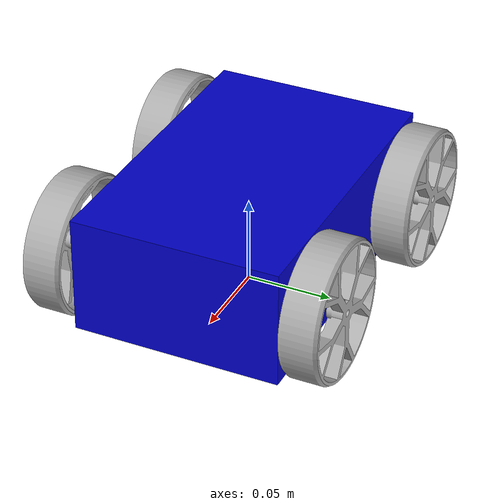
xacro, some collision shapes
<?xml version="1.0"?>
<robot name="rosbot" xmlns:xacro="http://ros.org/wiki/xacro">

  <!-- Properties -->
  <xacro:property name="M_PI" value="3.14159"/>
  <!-- Base Size -->
  <xacro:property name="base_length" value="0.184" />
  <xacro:property name="base_width" value="0.120" />
  <xacro:property name="base_height" value="0.068" />

  <!-- Wheel Properties -->
  <xacro:property name="wheel_base" value="0.123" />
  <xacro:property name="wheel_track" value="0.146" />
  <xacro:property name="wheel_vertical_offset" value="0" />
  <xacro:property name="wheel_width" value="0.025" />
  <xacro:property name="wheel_radius" value="0.040" />

  <!-- Calculated Properties -->
  <xacro:property name="base_vertical_offset" value="${wheel_radius-wheel_vertical_offset}" />

  <!-- Materials -->
  <material name="Blue">
    <color rgba="0.0 0.0 0.8 1.0"/>
  </material>
  <material name="Grey">
    <color rgba="0.7 0.7 0.7 1.0"/>
  </material>

  <!-- Wheel macro definition -->
  <xacro:macro name="rosbot_wheel" params="wheel_prefix flip *joint_pose">
    <!-- Wheel link -->
    <link name="${wheel_prefix}_wheel_link">
      <visual>
        <origin xyz="${flip*wheel_radius} ${-flip*wheel_width/2} ${-wheel_radius}" rpy="${M_PI/2} 0 ${flip*M_PI/2+M_PI/2}" />
        <geometry>
          <mesh filename="package://rosbot_description/meshes/wheel.dae" />
        </geometry>
        <material name="Grey" />
      </visual>

      <collision>
        <origin xyz="0 0 0" rpy="${M_PI/2} 0 0" />
        <geometry>
          <cylinder length="${wheel_width}" radius="${wheel_radius}" />
        </geometry>
      </collision>

      <inertial>
        <origin xyz="0 0 0"/>
        <mass value="0.15" />
        <inertia  ixx="0.0001" ixy="0" ixz="0"
                  iyy="0.0001" iyz="0"
                  izz="0.0001" />
      </inertial>
    </link>

    <gazebo reference="${wheel_prefix}_wheel_link">
      <mu1 value="200.0"/>
      <mu2 value="100.0"/>
      <kp value="10000000.0" />
      <kd value="1.0" />
      <material>Gazebo/Grey</material>
    </gazebo>

    <!-- Wheel to base joint -->
    <joint name="${wheel_prefix}" type="continuous">
      <parent link="base_link"/>
      <child link="${wheel_prefix}_wheel_link"/>
      <xacro:insert_block name="joint_pose"/>
      <axis xyz="0 1 0" rpy="0 0 0" />
    </joint>
  </xacro:macro>

  <!-- Base footprint link -->
  <link name="base_footprint"/>

  <!-- Footprint to base joint -->
  <joint name="footprint_joint" type="fixed">
    <origin xyz="0 0 ${base_vertical_offset}" rpy="0 0 0" />
    <parent link="base_footprint" />
    <child link="base_link" />
  </joint>

  <!-- Base link -->
  <link name="base_link">
    <visual>
      <origin xyz="0 0 0" rpy="0 0 0" />
      <geometry>
        <mesh filename="package://rosbot_description/meshes/base.dae"/>
      </geometry>
      <material name="Blue" />
    </visual>

    <collision>
      <origin xyz="0 0 0" rpy="0 0 0" />
      <geometry>
        <box size="${base_length} ${base_width} ${base_height}"/>
      </geometry>
    </collision>

    <inertial>
      <origin xyz="0 0 0" />
      <mass value="0.857" />
      <inertia  ixx="2.17" ixy="0" ixz="0"
                iyy="3.09" iyz="0"
                izz="4.76" />
    </inertial>
  </link>

  <gazebo reference="base_link">
    <material>Gazebo/Blue</material>
  </gazebo>

  <!-- Create wheels from macro -->
  <xacro:rosbot_wheel wheel_prefix="front_left" flip="-1">
    <origin xyz="${wheel_base/2} ${wheel_track/2} ${wheel_vertical_offset}" rpy="0 0 0" />
  </xacro:rosbot_wheel>
  <xacro:rosbot_wheel wheel_prefix="front_right" flip="1">
    <origin xyz="${wheel_base/2} ${-wheel_track/2} ${wheel_vertical_offset}" rpy="0 0 0" />
  </xacro:rosbot_wheel>
  <xacro:rosbot_wheel wheel_prefix="rear_left" flip="-1">
    <origin xyz="${-wheel_base/2} ${wheel_track/2} ${wheel_vertical_offset}" rpy="0 0 0" />
  </xacro:rosbot_wheel>
  <xacro:rosbot_wheel wheel_prefix="rear_right" flip="1">
    <origin xyz="${-wheel_base/2} ${-wheel_track/2} ${wheel_vertical_offset}" rpy="0 0 0" />
  </xacro:rosbot_wheel>

  <!-- ROS2 Control -->
  <ros2_control name="GazeboSystem" type="system">
    <!-- ROS 2 Humble -->
    <hardware>
      <plugin>ign_ros2_control/IgnitionSystem</plugin>
    </hardware>

    <!-- Front wheels (for steering) -->
    <joint name="front_left">
      <command_interface name="velocity">
        <param name="min">-10</param>
        <param name="max">10</param>
      </command_interface>
      <state_interface name="position" />
      <state_interface name="velocity" />
    </joint>

    <joint name="front_right">
      <command_interface name="velocity">
        <param name="min">-10</param>
        <param name="max">10</param>
      </command_interface>
      <state_interface name="position" />
      <state_interface name="velocity" />
    </joint>

    <!-- Rear wheels (for driving) -->
    <joint name="rear_left">
      <command_interface name="velocity">
        <param name="min">-10</param>
        <param name="max">10</param>
      </command_interface>
      <state_interface name="position" />
      <state_interface name="velocity" />
    </joint>

    <joint name="rear_right">
      <command_interface name="velocity">
        <param name="min">-10</param>
        <param name="max">10</param>
      </command_interface>
      <state_interface name="position" />
      <state_interface name="velocity" />
    </joint>
  </ros2_control>

  <gazebo>
    <!-- ROS 2 Humble -->
    <plugin filename="ign_ros2_control-system" name="ign_ros2_control::IgnitionROS2ControlPlugin">
      <parameters>$(find rosbot_control)/config/control.yaml</parameters>
    </plugin>

  </gazebo>

</robot>
